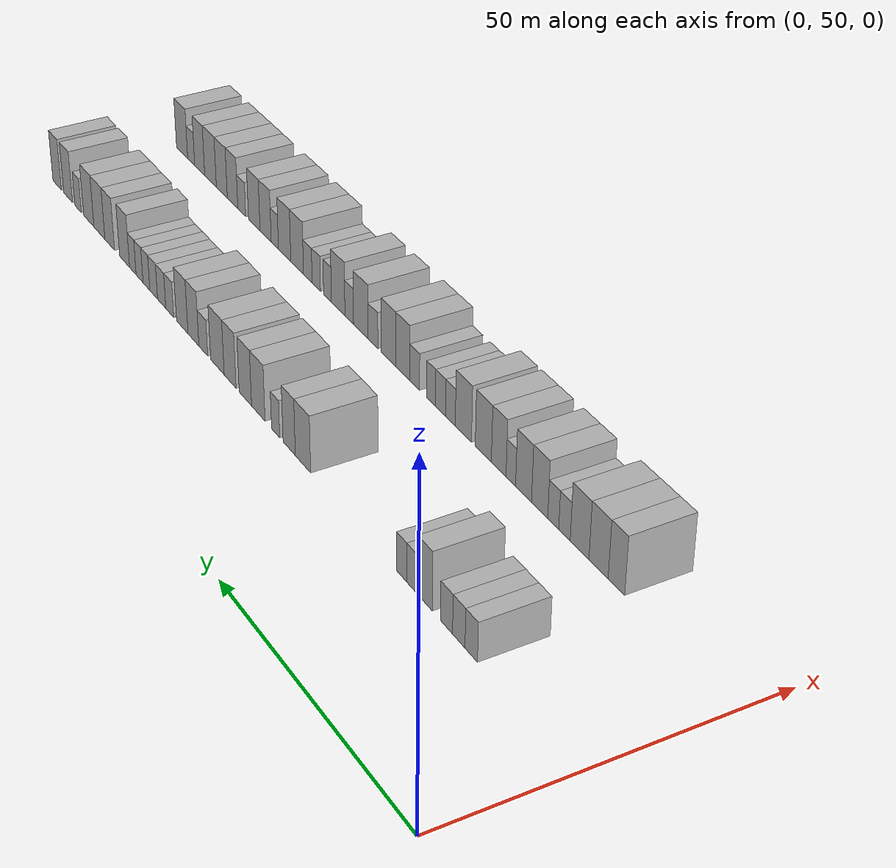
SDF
<sdf version="1.6">
 <world name="default">
  <model name="building_58">
   <static>1</static>
   <pose>25.0000 72.9330 0 0.000000 0.000000 0.000000</pose>
   <link name="link">
    <pose>0 0 3.00 0 0 0</pose>
    <collision name="collision"><geometry><box><size>10.0000 2.9168 6.0000</size></box></geometry></collision>
    <visual name="visual">
     <cast_shadows>0</cast_shadows>
     <geometry><box><size>10.0000 2.9168 6.0000</size></box></geometry>
     <material>
      <script>
       <uri>model://HANNAS_wall/materials/scripts</uri>
       <uri>model://HANNAS_wall/materials/textures</uri>
       <name>vrc/HANNAS_wall</name>
      </script>
     </material>
    </visual>
   </link>
  </model>
  <model name="building_59">
   <static>1</static>
   <pose>25.0000 75.8683 0 0.000000 0.000000 0.000000</pose>
   <link name="link">
    <pose>0 0 3.00 0 0 0</pose>
    <collision name="collision"><geometry><box><size>10.0000 2.9537 6.0000</size></box></geometry></collision>
    <visual name="visual">
     <cast_shadows>0</cast_shadows>
     <geometry><box><size>10.0000 2.9537 6.0000</size></box></geometry>
     <material>
      <script>
       <uri>model://HANNAS_wall/materials/scripts</uri>
       <uri>model://HANNAS_wall/materials/textures</uri>
       <name>vrc/HANNAS_wall</name>
      </script>
     </material>
    </visual>
   </link>
  </model>
  <model name="building_60">
   <static>1</static>
   <pose>25.0000 78.8032 0 0.000000 0.000000 0.000000</pose>
   <link name="link">
    <pose>0 0 3.00 0 0 0</pose>
    <collision name="collision"><geometry><box><size>10.0000 2.9161 6.0000</size></box></geometry></collision>
    <visual name="visual">
     <cast_shadows>0</cast_shadows>
     <geometry><box><size>10.0000 2.9161 6.0000</size></box></geometry>
     <material>
      <script>
       <uri>model://HANNAS_wall/materials/scripts</uri>
       <uri>model://HANNAS_wall/materials/textures</uri>
       <name>vrc/HANNAS_wall</name>
      </script>
     </material>
    </visual>
   </link>
  </model>
  <model name="building_61">
   <static>1</static>
   <pose>25.0000 84.0866 0 0.000000 0.000000 0.000000</pose>
   <link name="link">
    <pose>0 0 4.50 0 0 0</pose>
    <collision name="collision"><geometry><box><size>10.0000 3.6506 9.0000</size></box></geometry></collision>
    <visual name="visual">
     <cast_shadows>0</cast_shadows>
     <geometry><box><size>10.0000 3.6506 9.0000</size></box></geometry>
     <material>
      <script>
       <uri>model://HANNAS_wall/materials/scripts</uri>
       <uri>model://HANNAS_wall/materials/textures</uri>
       <name>vrc/HANNAS_wall</name>
      </script>
     </material>
    </visual>
   </link>
  </model>
  <model name="building_62">
   <static>1</static>
   <pose>25.0000 87.2775 0 0.000000 0.000000 0.000000</pose>
   <link name="link">
    <pose>0 0 3.00 0 0 0</pose>
    <collision name="collision"><geometry><box><size>10.0000 2.7312 6.0000</size></box></geometry></collision>
    <visual name="visual">
     <cast_shadows>0</cast_shadows>
     <geometry><box><size>10.0000 2.7312 6.0000</size></box></geometry>
     <material>
      <script>
       <uri>model://HANNAS_wall/materials/scripts</uri>
       <uri>model://HANNAS_wall/materials/textures</uri>
       <name>vrc/HANNAS_wall</name>
      </script>
     </material>
    </visual>
   </link>
  </model>
  <model name="building_63">
   <static>1</static>
   <pose>25.0000 89.9140 0 0.000000 0.000000 0.000000</pose>
   <link name="link">
    <pose>0 0 3.00 0 0 0</pose>
    <collision name="collision"><geometry><box><size>10.0000 2.5418 6.0000</size></box></geometry></collision>
    <visual name="visual">
     <cast_shadows>0</cast_shadows>
     <geometry><box><size>10.0000 2.5418 6.0000</size></box></geometry>
     <material>
      <script>
       <uri>model://HANNAS_wall/materials/scripts</uri>
       <uri>model://HANNAS_wall/materials/textures</uri>
       <name>vrc/HANNAS_wall</name>
      </script>
     </material>
    </visual>
   </link>
  </model>
  <model name="building_64">
   <static>1</static>
   <pose>25.0000 116.9255 0 0.000000 0.000000 0.000000</pose>
   <link name="link">
    <pose>0 0 4.50 0 0 0</pose>
    <collision name="collision"><geometry><box><size>10.0000 4.4937 9.0000</size></box></geometry></collision>
    <visual name="visual">
     <cast_shadows>0</cast_shadows>
     <geometry><box><size>10.0000 4.4937 9.0000</size></box></geometry>
     <material>
      <script>
       <uri>model://HANNAS_wall/materials/scripts</uri>
       <uri>model://HANNAS_wall/materials/textures</uri>
       <name>vrc/HANNAS_wall</name>
      </script>
     </material>
    </visual>
   </link>
  </model>
  <model name="building_65">
   <static>1</static>
   <pose>25.0000 121.0052 0 0.000000 0.000000 0.000000</pose>
   <link name="link">
    <pose>0 0 4.50 0 0 0</pose>
    <collision name="collision"><geometry><box><size>10.0000 3.6657 9.0000</size></box></geometry></collision>
    <visual name="visual">
     <cast_shadows>0</cast_shadows>
     <geometry><box><size>10.0000 3.6657 9.0000</size></box></geometry>
     <material>
      <script>
       <uri>model://HANNAS_wall/materials/scripts</uri>
       <uri>model://HANNAS_wall/materials/textures</uri>
       <name>vrc/HANNAS_wall</name>
      </script>
     </material>
    </visual>
   </link>
  </model>
  <model name="building_66">
   <static>1</static>
   <pose>25.0000 125.0866 0 0.000000 0.000000 0.000000</pose>
   <link name="link">
    <pose>0 0 3.00 0 0 0</pose>
    <collision name="collision"><geometry><box><size>10.0000 2.4970 6.0000</size></box></geometry></collision>
    <visual name="visual">
     <cast_shadows>0</cast_shadows>
     <geometry><box><size>10.0000 2.4970 6.0000</size></box></geometry>
     <material>
      <script>
       <uri>model://HANNAS_wall/materials/scripts</uri>
       <uri>model://HANNAS_wall/materials/textures</uri>
       <name>vrc/HANNAS_wall</name>
      </script>
     </material>
    </visual>
   </link>
  </model>
  <model name="building_67">
   <static>1</static>
   <pose>25.0000 130.4352 0 0.000000 0.000000 0.000000</pose>
   <link name="link">
    <pose>0 0 4.50 0 0 0</pose>
    <collision name="collision"><geometry><box><size>10.0000 4.2004 9.0000</size></box></geometry></collision>
    <visual name="visual">
     <cast_shadows>0</cast_shadows>
     <geometry><box><size>10.0000 4.2004 9.0000</size></box></geometry>
     <material>
      <script>
       <uri>model://HANNAS_wall/materials/scripts</uri>
       <uri>model://HANNAS_wall/materials/textures</uri>
       <name>vrc/HANNAS_wall</name>
      </script>
     </material>
    </visual>
   </link>
  </model>
  <model name="building_68">
   <static>1</static>
   <pose>25.0000 134.5130 0 0.000000 0.000000 0.000000</pose>
   <link name="link">
    <pose>0 0 4.50 0 0 0</pose>
    <collision name="collision"><geometry><box><size>10.0000 3.9551 9.0000</size></box></geometry></collision>
    <visual name="visual">
     <cast_shadows>0</cast_shadows>
     <geometry><box><size>10.0000 3.9551 9.0000</size></box></geometry>
     <material>
      <script>
       <uri>model://HANNAS_wall/materials/scripts</uri>
       <uri>model://HANNAS_wall/materials/textures</uri>
       <name>vrc/HANNAS_wall</name>
      </script>
     </material>
    </visual>
   </link>
  </model>
  <model name="building_69">
   <static>1</static>
   <pose>25.0000 139.4348 0 0.000000 0.000000 0.000000</pose>
   <link name="link">
    <pose>0 0 4.50 0 0 0</pose>
    <collision name="collision"><geometry><box><size>10.0000 3.8885 9.0000</size></box></geometry></collision>
    <visual name="visual">
     <cast_shadows>0</cast_shadows>
     <geometry><box><size>10.0000 3.8885 9.0000</size></box></geometry>
     <material>
      <script>
       <uri>model://HANNAS_wall/materials/scripts</uri>
       <uri>model://HANNAS_wall/materials/textures</uri>
       <name>vrc/HANNAS_wall</name>
      </script>
     </material>
    </visual>
   </link>
  </model>
  <model name="building_70">
   <static>1</static>
   <pose>25.0000 143.6241 0 0.000000 0.000000 0.000000</pose>
   <link name="link">
    <pose>0 0 4.50 0 0 0</pose>
    <collision name="collision"><geometry><box><size>10.0000 4.4902 9.0000</size></box></geometry></collision>
    <visual name="visual">
     <cast_shadows>0</cast_shadows>
     <geometry><box><size>10.0000 4.4902 9.0000</size></box></geometry>
     <material>
      <script>
       <uri>model://HANNAS_wall/materials/scripts</uri>
       <uri>model://HANNAS_wall/materials/textures</uri>
       <name>vrc/HANNAS_wall</name>
      </script>
     </material>
    </visual>
   </link>
  </model>
  <model name="building_71">
   <static>1</static>
   <pose>25.0000 148.3583 0 0.000000 0.000000 0.000000</pose>
   <link name="link">
    <pose>0 0 3.00 0 0 0</pose>
    <collision name="collision"><geometry><box><size>10.0000 2.9782 6.0000</size></box></geometry></collision>
    <visual name="visual">
     <cast_shadows>0</cast_shadows>
     <geometry><box><size>10.0000 2.9782 6.0000</size></box></geometry>
     <material>
      <script>
       <uri>model://HANNAS_wall/materials/scripts</uri>
       <uri>model://HANNAS_wall/materials/textures</uri>
       <name>vrc/HANNAS_wall</name>
      </script>
     </material>
    </visual>
   </link>
  </model>
  <model name="building_72">
   <static>1</static>
   <pose>25.0000 151.7246 0 0.000000 0.000000 0.000000</pose>
   <link name="link">
    <pose>0 0 4.50 0 0 0</pose>
    <collision name="collision"><geometry><box><size>10.0000 3.7546 9.0000</size></box></geometry></collision>
    <visual name="visual">
     <cast_shadows>0</cast_shadows>
     <geometry><box><size>10.0000 3.7546 9.0000</size></box></geometry>
     <material>
      <script>
       <uri>model://HANNAS_wall/materials/scripts</uri>
       <uri>model://HANNAS_wall/materials/textures</uri>
       <name>vrc/HANNAS_wall</name>
      </script>
     </material>
    </visual>
   </link>
  </model>
  <model name="building_73">
   <static>1</static>
   <pose>25.0000 155.6228 0 0.000000 0.000000 0.000000</pose>
   <link name="link">
    <pose>0 0 4.50 0 0 0</pose>
    <collision name="collision"><geometry><box><size>10.0000 4.0418 9.0000</size></box></geometry></collision>
    <visual name="visual">
     <cast_shadows>0</cast_shadows>
     <geometry><box><size>10.0000 4.0418 9.0000</size></box></geometry>
     <material>
      <script>
       <uri>model://HANNAS_wall/materials/scripts</uri>
       <uri>model://HANNAS_wall/materials/textures</uri>
       <name>vrc/HANNAS_wall</name>
      </script>
     </material>
    </visual>
   </link>
  </model>
  <model name="building_74">
   <static>1</static>
   <pose>25.0000 160.0553 0 0.000000 0.000000 0.000000</pose>
   <link name="link">
    <pose>0 0 3.00 0 0 0</pose>
    <collision name="collision"><geometry><box><size>10.0000 2.8232 6.0000</size></box></geometry></collision>
    <visual name="visual">
     <cast_shadows>0</cast_shadows>
     <geometry><box><size>10.0000 2.8232 6.0000</size></box></geometry>
     <material>
      <script>
       <uri>model://HANNAS_wall/materials/scripts</uri>
       <uri>model://HANNAS_wall/materials/textures</uri>
       <name>vrc/HANNAS_wall</name>
      </script>
     </material>
    </visual>
   </link>
  </model>
  <model name="building_75">
   <static>1</static>
   <pose>25.0000 162.9661 0 0.000000 0.000000 0.000000</pose>
   <link name="link">
    <pose>0 0 3.00 0 0 0</pose>
    <collision name="collision"><geometry><box><size>10.0000 2.9983 6.0000</size></box></geometry></collision>
    <visual name="visual">
     <cast_shadows>0</cast_shadows>
     <geometry><box><size>10.0000 2.9983 6.0000</size></box></geometry>
     <material>
      <script>
       <uri>model://HANNAS_wall/materials/scripts</uri>
       <uri>model://HANNAS_wall/materials/textures</uri>
       <name>vrc/HANNAS_wall</name>
      </script>
     </material>
    </visual>
   </link>
  </model>
  <model name="building_76">
   <static>1</static>
   <pose>25.0000 165.8763 0 0.000000 0.000000 0.000000</pose>
   <link name="link">
    <pose>0 0 3.00 0 0 0</pose>
    <collision name="collision"><geometry><box><size>10.0000 2.8222 6.0000</size></box></geometry></collision>
    <visual name="visual">
     <cast_shadows>0</cast_shadows>
     <geometry><box><size>10.0000 2.8222 6.0000</size></box></geometry>
     <material>
      <script>
       <uri>model://HANNAS_wall/materials/scripts</uri>
       <uri>model://HANNAS_wall/materials/textures</uri>
       <name>vrc/HANNAS_wall</name>
      </script>
     </material>
    </visual>
   </link>
  </model>
  <model name="building_77">
   <static>1</static>
   <pose>25.0000 168.5528 0 0.000000 0.000000 0.000000</pose>
   <link name="link">
    <pose>0 0 3.00 0 0 0</pose>
    <collision name="collision"><geometry><box><size>10.0000 2.5307 6.0000</size></box></geometry></collision>
    <visual name="visual">
     <cast_shadows>0</cast_shadows>
     <geometry><box><size>10.0000 2.5307 6.0000</size></box></geometry>
     <material>
      <script>
       <uri>model://HANNAS_wall/materials/scripts</uri>
       <uri>model://HANNAS_wall/materials/textures</uri>
       <name>vrc/HANNAS_wall</name>
      </script>
     </material>
    </visual>
   </link>
  </model>
  <model name="building_78">
   <static>1</static>
   <pose>25.0000 171.1189 0 0.000000 0.000000 0.000000</pose>
   <link name="link">
    <pose>0 0 3.00 0 0 0</pose>
    <collision name="collision"><geometry><box><size>10.0000 2.6015 6.0000</size></box></geometry></collision>
    <visual name="visual">
     <cast_shadows>0</cast_shadows>
     <geometry><box><size>10.0000 2.6015 6.0000</size></box></geometry>
     <material>
      <script>
       <uri>model://HANNAS_wall/materials/scripts</uri>
       <uri>model://HANNAS_wall/materials/textures</uri>
       <name>vrc/HANNAS_wall</name>
      </script>
     </material>
    </visual>
   </link>
  </model>
  <model name="building_79">
   <static>1</static>
   <pose>25.0000 173.6603 0 0.000000 0.000000 0.000000</pose>
   <link name="link">
    <pose>0 0 3.00 0 0 0</pose>
    <collision name="collision"><geometry><box><size>10.0000 2.4813 6.0000</size></box></geometry></collision>
    <visual name="visual">
     <cast_shadows>0</cast_shadows>
     <geometry><box><size>10.0000 2.4813 6.0000</size></box></geometry>
     <material>
      <script>
       <uri>model://HANNAS_wall/materials/scripts</uri>
       <uri>model://HANNAS_wall/materials/textures</uri>
       <name>vrc/HANNAS_wall</name>
      </script>
     </material>
    </visual>
   </link>
  </model>
  <model name="building_80">
   <static>1</static>
   <pose>25.0000 176.8106 0 0.000000 0.000000 0.000000</pose>
   <link name="link">
    <pose>0 0 4.50 0 0 0</pose>
    <collision name="collision"><geometry><box><size>10.0000 3.8193 9.0000</size></box></geometry></collision>
    <visual name="visual">
     <cast_shadows>0</cast_shadows>
     <geometry><box><size>10.0000 3.8193 9.0000</size></box></geometry>
     <material>
      <script>
       <uri>model://HANNAS_wall/materials/scripts</uri>
       <uri>model://HANNAS_wall/materials/textures</uri>
       <name>vrc/HANNAS_wall</name>
      </script>
     </material>
    </visual>
   </link>
  </model>
  <model name="building_81">
   <static>1</static>
   <pose>25.0000 182.6180 0 0.000000 0.000000 0.000000</pose>
   <link name="link">
    <pose>0 0 4.50 0 0 0</pose>
    <collision name="collision"><geometry><box><size>10.0000 3.7956 9.0000</size></box></geometry></collision>
    <visual name="visual">
     <cast_shadows>0</cast_shadows>
     <geometry><box><size>10.0000 3.7956 9.0000</size></box></geometry>
     <material>
      <script>
       <uri>model://HANNAS_wall/materials/scripts</uri>
       <uri>model://HANNAS_wall/materials/textures</uri>
       <name>vrc/HANNAS_wall</name>
      </script>
     </material>
    </visual>
   </link>
  </model>
  <model name="building_82">
   <static>1</static>
   <pose>25.0000 186.7122 0 0.000000 0.000000 0.000000</pose>
   <link name="link">
    <pose>0 0 4.50 0 0 0</pose>
    <collision name="collision"><geometry><box><size>10.0000 4.3926 9.0000</size></box></geometry></collision>
    <visual name="visual">
     <cast_shadows>0</cast_shadows>
     <geometry><box><size>10.0000 4.3926 9.0000</size></box></geometry>
     <material>
      <script>
       <uri>model://HANNAS_wall/materials/scripts</uri>
       <uri>model://HANNAS_wall/materials/textures</uri>
       <name>vrc/HANNAS_wall</name>
      </script>
     </material>
    </visual>
   </link>
  </model>
  <model name="building_83">
   <static>1</static>
   <pose>25.0000 191.0016 0 0.000000 0.000000 0.000000</pose>
   <link name="link">
    <pose>0 0 4.50 0 0 0</pose>
    <collision name="collision"><geometry><box><size>10.0000 4.1864 9.0000</size></box></geometry></collision>
    <visual name="visual">
     <cast_shadows>0</cast_shadows>
     <geometry><box><size>10.0000 4.1864 9.0000</size></box></geometry>
     <material>
      <script>
       <uri>model://HANNAS_wall/materials/scripts</uri>
       <uri>model://HANNAS_wall/materials/textures</uri>
       <name>vrc/HANNAS_wall</name>
      </script>
     </material>
    </visual>
   </link>
  </model>
  <model name="building_84">
   <static>1</static>
   <pose>25.0000 195.4252 0 0.000000 0.000000 0.000000</pose>
   <link name="link">
    <pose>0 0 3.00 0 0 0</pose>
    <collision name="collision"><geometry><box><size>10.0000 2.6609 6.0000</size></box></geometry></collision>
    <visual name="visual">
     <cast_shadows>0</cast_shadows>
     <geometry><box><size>10.0000 2.6609 6.0000</size></box></geometry>
     <material>
      <script>
       <uri>model://HANNAS_wall/materials/scripts</uri>
       <uri>model://HANNAS_wall/materials/textures</uri>
       <name>vrc/HANNAS_wall</name>
      </script>
     </material>
    </visual>
   </link>
  </model>
  <model name="building_85">
   <static>1</static>
   <pose>25.0000 199.6288 0 0.000000 0.000000 0.000000</pose>
   <link name="link">
    <pose>0 0 4.50 0 0 0</pose>
    <collision name="collision"><geometry><box><size>10.0000 3.7462 9.0000</size></box></geometry></collision>
    <visual name="visual">
     <cast_shadows>0</cast_shadows>
     <geometry><box><size>10.0000 3.7462 9.0000</size></box></geometry>
     <material>
      <script>
       <uri>model://HANNAS_wall/materials/scripts</uri>
       <uri>model://HANNAS_wall/materials/textures</uri>
       <name>vrc/HANNAS_wall</name>
      </script>
     </material>
    </visual>
   </link>
  </model>
  <model name="building_86">
   <static>1</static>
   <pose>25.0000 204.3061 0 0.000000 0.000000 0.000000</pose>
   <link name="link">
    <pose>0 0 4.50 0 0 0</pose>
    <collision name="collision"><geometry><box><size>10.0000 3.6085 9.0000</size></box></geometry></collision>
    <visual name="visual">
     <cast_shadows>0</cast_shadows>
     <geometry><box><size>10.0000 3.6085 9.0000</size></box></geometry>
     <material>
      <script>
       <uri>model://HANNAS_wall/materials/scripts</uri>
       <uri>model://HANNAS_wall/materials/textures</uri>
       <name>vrc/HANNAS_wall</name>
      </script>
     </material>
    </visual>
   </link>
  </model>
  <model name="building_158">
   <static>1</static>
   <pose>47.0000 75.5130 0 0.000000 0.000000 0.000000</pose>
   <link name="link">
    <pose>0 0 4.50 0 0 0</pose>
    <collision name="collision"><geometry><box><size>10.0000 3.6854 9.0000</size></box></geometry></collision>
    <visual name="visual">
     <cast_shadows>0</cast_shadows>
     <geometry><box><size>10.0000 3.6854 9.0000</size></box></geometry>
     <material>
      <script>
       <uri>model://HANNAS_wall/materials/scripts</uri>
       <uri>model://HANNAS_wall/materials/textures</uri>
       <name>vrc/HANNAS_wall</name>
      </script>
     </material>
    </visual>
   </link>
  </model>
  <model name="building_159">
   <static>1</static>
   <pose>47.0000 79.5340 0 0.000000 0.000000 0.000000</pose>
   <link name="link">
    <pose>0 0 4.50 0 0 0</pose>
    <collision name="collision"><geometry><box><size>10.0000 4.3566 9.0000</size></box></geometry></collision>
    <visual name="visual">
     <cast_shadows>0</cast_shadows>
     <geometry><box><size>10.0000 4.3566 9.0000</size></box></geometry>
     <material>
      <script>
       <uri>model://HANNAS_wall/materials/scripts</uri>
       <uri>model://HANNAS_wall/materials/textures</uri>
       <name>vrc/HANNAS_wall</name>
      </script>
     </material>
    </visual>
   </link>
  </model>
  <model name="building_160">
   <static>1</static>
   <pose>47.0000 83.8882 0 0.000000 0.000000 0.000000</pose>
   <link name="link">
    <pose>0 0 4.50 0 0 0</pose>
    <collision name="collision"><geometry><box><size>10.0000 4.3517 9.0000</size></box></geometry></collision>
    <visual name="visual">
     <cast_shadows>0</cast_shadows>
     <geometry><box><size>10.0000 4.3517 9.0000</size></box></geometry>
     <material>
      <script>
       <uri>model://HANNAS_wall/materials/scripts</uri>
       <uri>model://HANNAS_wall/materials/textures</uri>
       <name>vrc/HANNAS_wall</name>
      </script>
     </material>
    </visual>
   </link>
  </model>
  <model name="building_161">
   <static>1</static>
   <pose>47.0000 87.4265 0 0.000000 0.000000 0.000000</pose>
   <link name="link">
    <pose>0 0 3.00 0 0 0</pose>
    <collision name="collision"><geometry><box><size>10.0000 2.7249 6.0000</size></box></geometry></collision>
    <visual name="visual">
     <cast_shadows>0</cast_shadows>
     <geometry><box><size>10.0000 2.7249 6.0000</size></box></geometry>
     <material>
      <script>
       <uri>model://HANNAS_wall/materials/scripts</uri>
       <uri>model://HANNAS_wall/materials/textures</uri>
       <name>vrc/HANNAS_wall</name>
      </script>
     </material>
    </visual>
   </link>
  </model>
  <model name="building_162">
   <static>1</static>
   <pose>47.0000 90.1028 0 0.000000 0.000000 0.000000</pose>
   <link name="link">
    <pose>0 0 3.00 0 0 0</pose>
    <collision name="collision"><geometry><box><size>10.0000 2.6276 6.0000</size></box></geometry></collision>
    <visual name="visual">
     <cast_shadows>0</cast_shadows>
     <geometry><box><size>10.0000 2.6276 6.0000</size></box></geometry>
     <material>
      <script>
       <uri>model://HANNAS_wall/materials/scripts</uri>
       <uri>model://HANNAS_wall/materials/textures</uri>
       <name>vrc/HANNAS_wall</name>
      </script>
     </material>
    </visual>
   </link>
  </model>
  <model name="building_163">
   <static>1</static>
   <pose>47.0000 93.3906 0 0.000000 0.000000 0.000000</pose>
   <link name="link">
    <pose>0 0 4.50 0 0 0</pose>
    <collision name="collision"><geometry><box><size>10.0000 3.9480 9.0000</size></box></geometry></collision>
    <visual name="visual">
     <cast_shadows>0</cast_shadows>
     <geometry><box><size>10.0000 3.9480 9.0000</size></box></geometry>
     <material>
      <script>
       <uri>model://HANNAS_wall/materials/scripts</uri>
       <uri>model://HANNAS_wall/materials/textures</uri>
       <name>vrc/HANNAS_wall</name>
      </script>
     </material>
    </visual>
   </link>
  </model>
  <model name="building_164">
   <static>1</static>
   <pose>47.0000 97.3415 0 0.000000 0.000000 0.000000</pose>
   <link name="link">
    <pose>0 0 4.50 0 0 0</pose>
    <collision name="collision"><geometry><box><size>10.0000 3.9539 9.0000</size></box></geometry></collision>
    <visual name="visual">
     <cast_shadows>0</cast_shadows>
     <geometry><box><size>10.0000 3.9539 9.0000</size></box></geometry>
     <material>
      <script>
       <uri>model://HANNAS_wall/materials/scripts</uri>
       <uri>model://HANNAS_wall/materials/textures</uri>
       <name>vrc/HANNAS_wall</name>
      </script>
     </material>
    </visual>
   </link>
  </model>
  <model name="building_165">
   <static>1</static>
   <pose>47.0000 100.5230 0 0.000000 0.000000 0.000000</pose>
   <link name="link">
    <pose>0 0 3.00 0 0 0</pose>
    <collision name="collision"><geometry><box><size>10.0000 2.4090 6.0000</size></box></geometry></collision>
    <visual name="visual">
     <cast_shadows>0</cast_shadows>
     <geometry><box><size>10.0000 2.4090 6.0000</size></box></geometry>
     <material>
      <script>
       <uri>model://HANNAS_wall/materials/scripts</uri>
       <uri>model://HANNAS_wall/materials/textures</uri>
       <name>vrc/HANNAS_wall</name>
      </script>
     </material>
    </visual>
   </link>
  </model>
  <model name="building_166">
   <static>1</static>
   <pose>47.0000 103.6096 0 0.000000 0.000000 0.000000</pose>
   <link name="link">
    <pose>0 0 4.50 0 0 0</pose>
    <collision name="collision"><geometry><box><size>10.0000 3.7642 9.0000</size></box></geometry></collision>
    <visual name="visual">
     <cast_shadows>0</cast_shadows>
     <geometry><box><size>10.0000 3.7642 9.0000</size></box></geometry>
     <material>
      <script>
       <uri>model://HANNAS_wall/materials/scripts</uri>
       <uri>model://HANNAS_wall/materials/textures</uri>
       <name>vrc/HANNAS_wall</name>
      </script>
     </material>
    </visual>
   </link>
  </model>
  <model name="building_167">
   <static>1</static>
   <pose>47.0000 107.5890 0 0.000000 0.000000 0.000000</pose>
   <link name="link">
    <pose>0 0 4.50 0 0 0</pose>
    <collision name="collision"><geometry><box><size>10.0000 4.1945 9.0000</size></box></geometry></collision>
    <visual name="visual">
     <cast_shadows>0</cast_shadows>
     <geometry><box><size>10.0000 4.1945 9.0000</size></box></geometry>
     <material>
      <script>
       <uri>model://HANNAS_wall/materials/scripts</uri>
       <uri>model://HANNAS_wall/materials/textures</uri>
       <name>vrc/HANNAS_wall</name>
      </script>
     </material>
    </visual>
   </link>
  </model>
  <model name="building_168">
   <static>1</static>
   <pose>47.0000 112.8550 0 0.000000 0.000000 0.000000</pose>
   <link name="link">
    <pose>0 0 4.50 0 0 0</pose>
    <collision name="collision"><geometry><box><size>10.0000 4.3376 9.0000</size></box></geometry></collision>
    <visual name="visual">
     <cast_shadows>0</cast_shadows>
     <geometry><box><size>10.0000 4.3376 9.0000</size></box></geometry>
     <material>
      <script>
       <uri>model://HANNAS_wall/materials/scripts</uri>
       <uri>model://HANNAS_wall/materials/textures</uri>
       <name>vrc/HANNAS_wall</name>
      </script>
     </material>
    </visual>
   </link>
  </model>
  <model name="building_169">
   <static>1</static>
   <pose>47.0000 116.3596 0 0.000000 0.000000 0.000000</pose>
   <link name="link">
    <pose>0 0 3.00 0 0 0</pose>
    <collision name="collision"><geometry><box><size>10.0000 2.6716 6.0000</size></box></geometry></collision>
    <visual name="visual">
     <cast_shadows>0</cast_shadows>
     <geometry><box><size>10.0000 2.6716 6.0000</size></box></geometry>
     <material>
      <script>
       <uri>model://HANNAS_wall/materials/scripts</uri>
       <uri>model://HANNAS_wall/materials/textures</uri>
       <name>vrc/HANNAS_wall</name>
      </script>
     </material>
    </visual>
   </link>
  </model>
  <model name="building_170">
   <static>1</static>
   <pose>47.0000 119.0756 0 0.000000 0.000000 0.000000</pose>
   <link name="link">
    <pose>0 0 3.00 0 0 0</pose>
    <collision name="collision"><geometry><box><size>10.0000 2.7604 6.0000</size></box></geometry></collision>
    <visual name="visual">
     <cast_shadows>0</cast_shadows>
     <geometry><box><size>10.0000 2.7604 6.0000</size></box></geometry>
     <material>
      <script>
       <uri>model://HANNAS_wall/materials/scripts</uri>
       <uri>model://HANNAS_wall/materials/textures</uri>
       <name>vrc/HANNAS_wall</name>
      </script>
     </material>
    </visual>
   </link>
  </model>
  <model name="building_171">
   <static>1</static>
   <pose>47.0000 121.6962 0 0.000000 0.000000 0.000000</pose>
   <link name="link">
    <pose>0 0 3.00 0 0 0</pose>
    <collision name="collision"><geometry><box><size>10.0000 2.4808 6.0000</size></box></geometry></collision>
    <visual name="visual">
     <cast_shadows>0</cast_shadows>
     <geometry><box><size>10.0000 2.4808 6.0000</size></box></geometry>
     <material>
      <script>
       <uri>model://HANNAS_wall/materials/scripts</uri>
       <uri>model://HANNAS_wall/materials/textures</uri>
       <name>vrc/HANNAS_wall</name>
      </script>
     </material>
    </visual>
   </link>
  </model>
  <model name="building_172">
   <static>1</static>
   <pose>47.0000 126.3470 0 0.000000 0.000000 0.000000</pose>
   <link name="link">
    <pose>0 0 3.00 0 0 0</pose>
    <collision name="collision"><geometry><box><size>10.0000 2.8208 6.0000</size></box></geometry></collision>
    <visual name="visual">
     <cast_shadows>0</cast_shadows>
     <geometry><box><size>10.0000 2.8208 6.0000</size></box></geometry>
     <material>
      <script>
       <uri>model://HANNAS_wall/materials/scripts</uri>
       <uri>model://HANNAS_wall/materials/textures</uri>
       <name>vrc/HANNAS_wall</name>
      </script>
     </material>
    </visual>
   </link>
  </model>
  <model name="building_173">
   <static>1</static>
   <pose>47.0000 129.8054 0 0.000000 0.000000 0.000000</pose>
   <link name="link">
    <pose>0 0 4.50 0 0 0</pose>
    <collision name="collision"><geometry><box><size>10.0000 4.0961 9.0000</size></box></geometry></collision>
    <visual name="visual">
     <cast_shadows>0</cast_shadows>
     <geometry><box><size>10.0000 4.0961 9.0000</size></box></geometry>
     <material>
      <script>
       <uri>model://HANNAS_wall/materials/scripts</uri>
       <uri>model://HANNAS_wall/materials/textures</uri>
       <name>vrc/HANNAS_wall</name>
      </script>
     </material>
    </visual>
   </link>
  </model>
  <model name="building_174">
   <static>1</static>
   <pose>47.0000 133.9617 0 0.000000 0.000000 0.000000</pose>
   <link name="link">
    <pose>0 0 4.50 0 0 0</pose>
    <collision name="collision"><geometry><box><size>10.0000 4.2165 9.0000</size></box></geometry></collision>
    <visual name="visual">
     <cast_shadows>0</cast_shadows>
     <geometry><box><size>10.0000 4.2165 9.0000</size></box></geometry>
     <material>
      <script>
       <uri>model://HANNAS_wall/materials/scripts</uri>
       <uri>model://HANNAS_wall/materials/textures</uri>
       <name>vrc/HANNAS_wall</name>
      </script>
     </material>
    </visual>
   </link>
  </model>
  <model name="building_175">
   <static>1</static>
   <pose>47.0000 138.5522 0 0.000000 0.000000 0.000000</pose>
   <link name="link">
    <pose>0 0 3.00 0 0 0</pose>
    <collision name="collision"><geometry><box><size>10.0000 2.9644 6.0000</size></box></geometry></collision>
    <visual name="visual">
     <cast_shadows>0</cast_shadows>
     <geometry><box><size>10.0000 2.9644 6.0000</size></box></geometry>
     <material>
      <script>
       <uri>model://HANNAS_wall/materials/scripts</uri>
       <uri>model://HANNAS_wall/materials/textures</uri>
       <name>vrc/HANNAS_wall</name>
      </script>
     </material>
    </visual>
   </link>
  </model>
  <model name="building_176">
   <static>1</static>
   <pose>47.0000 142.2617 0 0.000000 0.000000 0.000000</pose>
   <link name="link">
    <pose>0 0 4.50 0 0 0</pose>
    <collision name="collision"><geometry><box><size>10.0000 4.4545 9.0000</size></box></geometry></collision>
    <visual name="visual">
     <cast_shadows>0</cast_shadows>
     <geometry><box><size>10.0000 4.4545 9.0000</size></box></geometry>
     <material>
      <script>
       <uri>model://HANNAS_wall/materials/scripts</uri>
       <uri>model://HANNAS_wall/materials/textures</uri>
       <name>vrc/HANNAS_wall</name>
      </script>
     </material>
    </visual>
   </link>
  </model>
  <model name="building_177">
   <static>1</static>
   <pose>47.0000 145.8343 0 0.000000 0.000000 0.000000</pose>
   <link name="link">
    <pose>0 0 3.00 0 0 0</pose>
    <collision name="collision"><geometry><box><size>10.0000 2.6906 6.0000</size></box></geometry></collision>
    <visual name="visual">
     <cast_shadows>0</cast_shadows>
     <geometry><box><size>10.0000 2.6906 6.0000</size></box></geometry>
     <material>
      <script>
       <uri>model://HANNAS_wall/materials/scripts</uri>
       <uri>model://HANNAS_wall/materials/textures</uri>
       <name>vrc/HANNAS_wall</name>
      </script>
     </material>
    </visual>
   </link>
  </model>
  <model name="building_178">
   <static>1</static>
   <pose>47.0000 149.3230 0 0.000000 0.000000 0.000000</pose>
   <link name="link">
    <pose>0 0 4.50 0 0 0</pose>
    <collision name="collision"><geometry><box><size>10.0000 4.2869 9.0000</size></box></geometry></collision>
    <visual name="visual">
     <cast_shadows>0</cast_shadows>
     <geometry><box><size>10.0000 4.2869 9.0000</size></box></geometry>
     <material>
      <script>
       <uri>model://HANNAS_wall/materials/scripts</uri>
       <uri>model://HANNAS_wall/materials/textures</uri>
       <name>vrc/HANNAS_wall</name>
      </script>
     </material>
    </visual>
   </link>
  </model>
  <model name="building_179">
   <static>1</static>
   <pose>47.0000 152.7204 0 0.000000 0.000000 0.000000</pose>
   <link name="link">
    <pose>0 0 3.00 0 0 0</pose>
    <collision name="collision"><geometry><box><size>10.0000 2.5080 6.0000</size></box></geometry></collision>
    <visual name="visual">
     <cast_shadows>0</cast_shadows>
     <geometry><box><size>10.0000 2.5080 6.0000</size></box></geometry>
     <material>
      <script>
       <uri>model://HANNAS_wall/materials/scripts</uri>
       <uri>model://HANNAS_wall/materials/textures</uri>
       <name>vrc/HANNAS_wall</name>
      </script>
     </material>
    </visual>
   </link>
  </model>
  <model name="building_180">
   <static>1</static>
   <pose>47.0000 156.3423 0 0.000000 0.000000 0.000000</pose>
   <link name="link">
    <pose>0 0 3.00 0 0 0</pose>
    <collision name="collision"><geometry><box><size>10.0000 2.7358 6.0000</size></box></geometry></collision>
    <visual name="visual">
     <cast_shadows>0</cast_shadows>
     <geometry><box><size>10.0000 2.7358 6.0000</size></box></geometry>
     <material>
      <script>
       <uri>model://HANNAS_wall/materials/scripts</uri>
       <uri>model://HANNAS_wall/materials/textures</uri>
       <name>vrc/HANNAS_wall</name>
      </script>
     </material>
    </visual>
   </link>
  </model>
  <model name="building_181">
   <static>1</static>
   <pose>47.0000 159.1332 0 0.000000 0.000000 0.000000</pose>
   <link name="link">
    <pose>0 0 3.00 0 0 0</pose>
    <collision name="collision"><geometry><box><size>10.0000 2.8460 6.0000</size></box></geometry></collision>
    <visual name="visual">
     <cast_shadows>0</cast_shadows>
     <geometry><box><size>10.0000 2.8460 6.0000</size></box></geometry>
     <material>
      <script>
       <uri>model://HANNAS_wall/materials/scripts</uri>
       <uri>model://HANNAS_wall/materials/textures</uri>
       <name>vrc/HANNAS_wall</name>
      </script>
     </material>
    </visual>
   </link>
  </model>
  <model name="building_182">
   <static>1</static>
   <pose>47.0000 162.6871 0 0.000000 0.000000 0.000000</pose>
   <link name="link">
    <pose>0 0 4.50 0 0 0</pose>
    <collision name="collision"><geometry><box><size>10.0000 4.2618 9.0000</size></box></geometry></collision>
    <visual name="visual">
     <cast_shadows>0</cast_shadows>
     <geometry><box><size>10.0000 4.2618 9.0000</size></box></geometry>
     <material>
      <script>
       <uri>model://HANNAS_wall/materials/scripts</uri>
       <uri>model://HANNAS_wall/materials/textures</uri>
       <name>vrc/HANNAS_wall</name>
      </script>
     </material>
    </visual>
   </link>
  </model>
  <model name="building_183">
   <static>1</static>
   <pose>47.0000 166.9292 0 0.000000 0.000000 0.000000</pose>
   <link name="link">
    <pose>0 0 4.50 0 0 0</pose>
    <collision name="collision"><geometry><box><size>10.0000 4.2223 9.0000</size></box></geometry></collision>
    <visual name="visual">
     <cast_shadows>0</cast_shadows>
     <geometry><box><size>10.0000 4.2223 9.0000</size></box></geometry>
     <material>
      <script>
       <uri>model://HANNAS_wall/materials/scripts</uri>
       <uri>model://HANNAS_wall/materials/textures</uri>
       <name>vrc/HANNAS_wall</name>
      </script>
     </material>
    </visual>
   </link>
  </model>
  <model name="building_184">
   <static>1</static>
   <pose>47.0000 170.2983 0 0.000000 0.000000 0.000000</pose>
   <link name="link">
    <pose>0 0 3.00 0 0 0</pose>
    <collision name="collision"><geometry><box><size>10.0000 2.5160 6.0000</size></box></geometry></collision>
    <visual name="visual">
     <cast_shadows>0</cast_shadows>
     <geometry><box><size>10.0000 2.5160 6.0000</size></box></geometry>
     <material>
      <script>
       <uri>model://HANNAS_wall/materials/scripts</uri>
       <uri>model://HANNAS_wall/materials/textures</uri>
       <name>vrc/HANNAS_wall</name>
      </script>
     </material>
    </visual>
   </link>
  </model>
  <model name="building_185">
   <static>1</static>
   <pose>47.0000 173.5174 0 0.000000 0.000000 0.000000</pose>
   <link name="link">
    <pose>0 0 4.50 0 0 0</pose>
    <collision name="collision"><geometry><box><size>10.0000 3.9221 9.0000</size></box></geometry></collision>
    <visual name="visual">
     <cast_shadows>0</cast_shadows>
     <geometry><box><size>10.0000 3.9221 9.0000</size></box></geometry>
     <material>
      <script>
       <uri>model://HANNAS_wall/materials/scripts</uri>
       <uri>model://HANNAS_wall/materials/textures</uri>
       <name>vrc/HANNAS_wall</name>
      </script>
     </material>
    </visual>
   </link>
  </model>
  <model name="building_186">
   <static>1</static>
   <pose>47.0000 177.5451 0 0.000000 0.000000 0.000000</pose>
   <link name="link">
    <pose>0 0 4.50 0 0 0</pose>
    <collision name="collision"><geometry><box><size>10.0000 4.1334 9.0000</size></box></geometry></collision>
    <visual name="visual">
     <cast_shadows>0</cast_shadows>
     <geometry><box><size>10.0000 4.1334 9.0000</size></box></geometry>
     <material>
      <script>
       <uri>model://HANNAS_wall/materials/scripts</uri>
       <uri>model://HANNAS_wall/materials/textures</uri>
       <name>vrc/HANNAS_wall</name>
      </script>
     </material>
    </visual>
   </link>
  </model>
  <model name="building_187">
   <static>1</static>
   <pose>47.0000 182.0479 0 0.000000 0.000000 0.000000</pose>
   <link name="link">
    <pose>0 0 3.00 0 0 0</pose>
    <collision name="collision"><geometry><box><size>10.0000 2.8721 6.0000</size></box></geometry></collision>
    <visual name="visual">
     <cast_shadows>0</cast_shadows>
     <geometry><box><size>10.0000 2.8721 6.0000</size></box></geometry>
     <material>
      <script>
       <uri>model://HANNAS_wall/materials/scripts</uri>
       <uri>model://HANNAS_wall/materials/textures</uri>
       <name>vrc/HANNAS_wall</name>
      </script>
     </material>
    </visual>
   </link>
  </model>
  <model name="building_188">
   <static>1</static>
   <pose>47.0000 185.4200 0 0.000000 0.000000 0.000000</pose>
   <link name="link">
    <pose>0 0 4.50 0 0 0</pose>
    <collision name="collision"><geometry><box><size>10.0000 3.8721 9.0000</size></box></geometry></collision>
    <visual name="visual">
     <cast_shadows>0</cast_shadows>
     <geometry><box><size>10.0000 3.8721 9.0000</size></box></geometry>
     <material>
      <script>
       <uri>model://HANNAS_wall/materials/scripts</uri>
       <uri>model://HANNAS_wall/materials/textures</uri>
       <name>vrc/HANNAS_wall</name>
      </script>
     </material>
    </visual>
   </link>
  </model>
  <model name="building_189">
   <static>1</static>
   <pose>47.0000 189.4125 0 0.000000 0.000000 0.000000</pose>
   <link name="link">
    <pose>0 0 4.50 0 0 0</pose>
    <collision name="collision"><geometry><box><size>10.0000 4.1128 9.0000</size></box></geometry></collision>
    <visual name="visual">
     <cast_shadows>0</cast_shadows>
     <geometry><box><size>10.0000 4.1128 9.0000</size></box></geometry>
     <material>
      <script>
       <uri>model://HANNAS_wall/materials/scripts</uri>
       <uri>model://HANNAS_wall/materials/textures</uri>
       <name>vrc/HANNAS_wall</name>
      </script>
     </material>
    </visual>
   </link>
  </model>
  <model name="building_190">
   <static>1</static>
   <pose>47.0000 193.6944 0 0.000000 0.000000 0.000000</pose>
   <link name="link">
    <pose>0 0 4.50 0 0 0</pose>
    <collision name="collision"><geometry><box><size>10.0000 4.4510 9.0000</size></box></geometry></collision>
    <visual name="visual">
     <cast_shadows>0</cast_shadows>
     <geometry><box><size>10.0000 4.4510 9.0000</size></box></geometry>
     <material>
      <script>
       <uri>model://HANNAS_wall/materials/scripts</uri>
       <uri>model://HANNAS_wall/materials/textures</uri>
       <name>vrc/HANNAS_wall</name>
      </script>
     </material>
    </visual>
   </link>
  </model>
  <model name="building_191">
   <static>1</static>
   <pose>47.0000 197.8688 0 0.000000 0.000000 0.000000</pose>
   <link name="link">
    <pose>0 0 4.50 0 0 0</pose>
    <collision name="collision"><geometry><box><size>10.0000 3.8979 9.0000</size></box></geometry></collision>
    <visual name="visual">
     <cast_shadows>0</cast_shadows>
     <geometry><box><size>10.0000 3.8979 9.0000</size></box></geometry>
     <material>
      <script>
       <uri>model://HANNAS_wall/materials/scripts</uri>
       <uri>model://HANNAS_wall/materials/textures</uri>
       <name>vrc/HANNAS_wall</name>
      </script>
     </material>
    </visual>
   </link>
  </model>
  <model name="building_192">
   <static>1</static>
   <pose>47.0000 201.1895 0 0.000000 0.000000 0.000000</pose>
   <link name="link">
    <pose>0 0 3.00 0 0 0</pose>
    <collision name="collision"><geometry><box><size>10.0000 2.7434 6.0000</size></box></geometry></collision>
    <visual name="visual">
     <cast_shadows>0</cast_shadows>
     <geometry><box><size>10.0000 2.7434 6.0000</size></box></geometry>
     <material>
      <script>
       <uri>model://HANNAS_wall/materials/scripts</uri>
       <uri>model://HANNAS_wall/materials/textures</uri>
       <name>vrc/HANNAS_wall</name>
      </script>
     </material>
    </visual>
   </link>
  </model>
  <model name="building_193">
   <static>1</static>
   <pose>47.0000 204.7704 0 0.000000 0.000000 0.000000</pose>
   <link name="link">
    <pose>0 0 4.50 0 0 0</pose>
    <collision name="collision"><geometry><box><size>10.0000 4.4183 9.0000</size></box></geometry></collision>
    <visual name="visual">
     <cast_shadows>0</cast_shadows>
     <geometry><box><size>10.0000 4.4183 9.0000</size></box></geometry>
     <material>
      <script>
       <uri>model://HANNAS_wall/materials/scripts</uri>
       <uri>model://HANNAS_wall/materials/textures</uri>
       <name>vrc/HANNAS_wall</name>
      </script>
     </material>
    </visual>
   </link>
  </model>
 </world>
</sdf>
